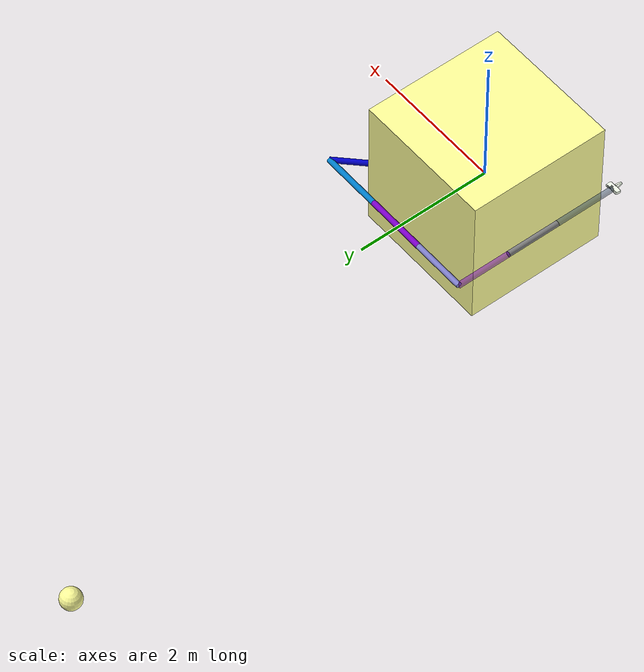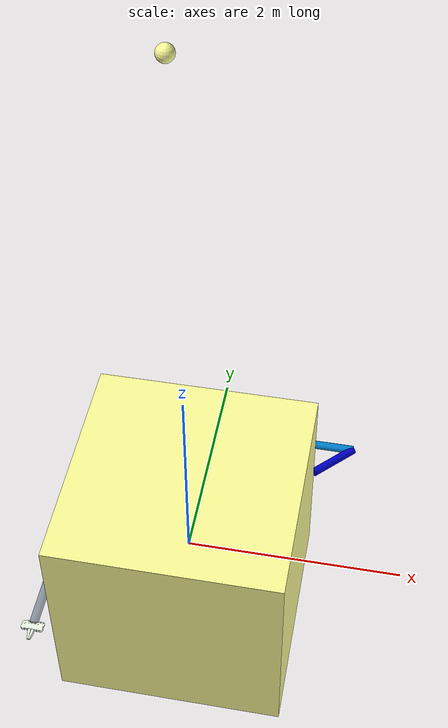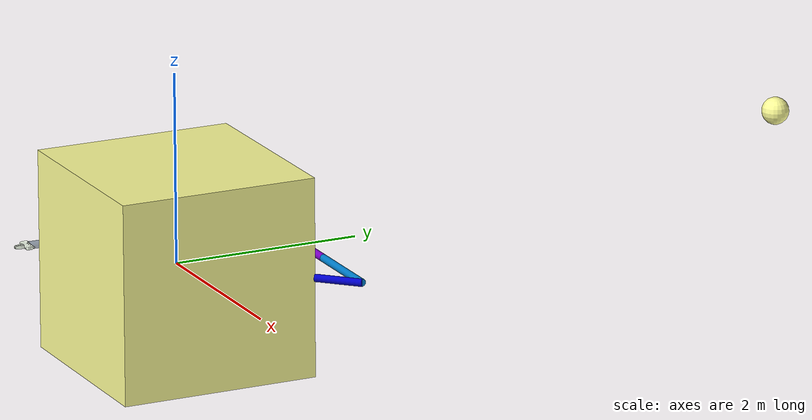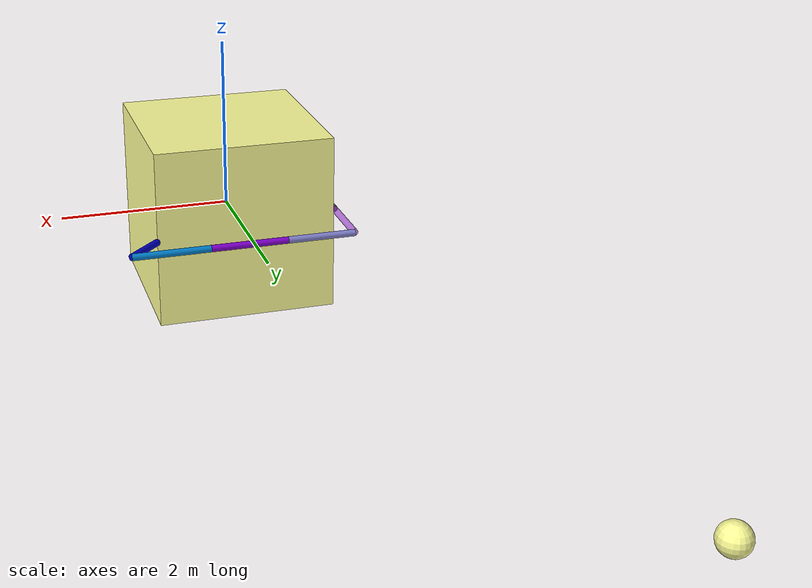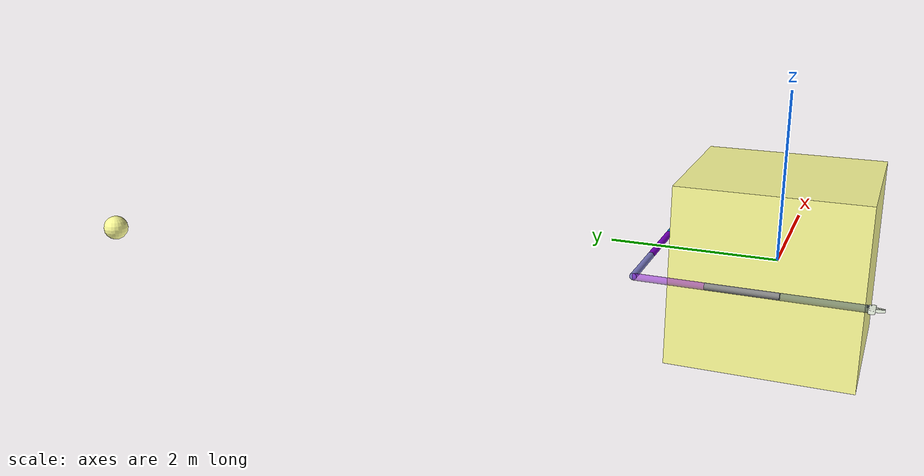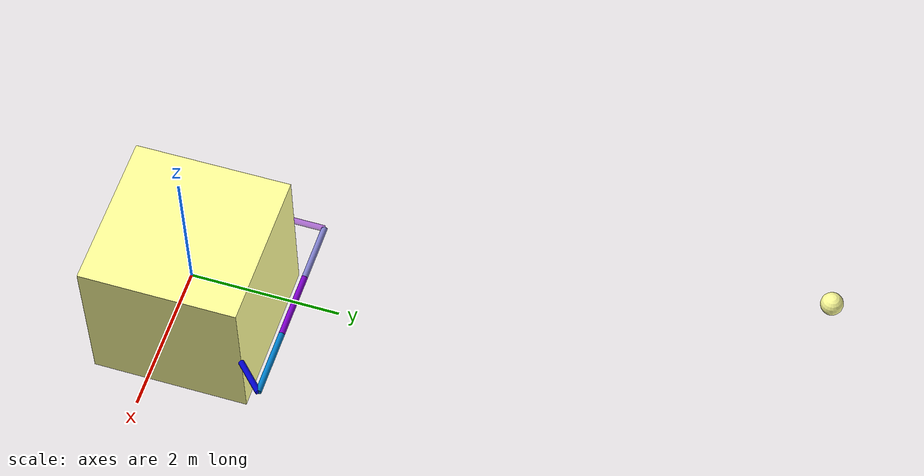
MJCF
<mujoco model="free_floating_spacecraft_manipulator">
    <compiler angle="radian" />
    <option timestep="0.1" iterations="30">
        <flag gravity="disable" />
    </option>
    <size njmax="1000" nconmax="100" />
    <default class="main">
        <default class="panda">
            <joint limited="true" />
            <general ctrllimited="true" forcelimited="true" biastype="affine" biasprm="0 -1 0 0 0 0 0 0 0 0" />
            <default class="spaceRobot_viz">
                <geom type="mesh" contype="0" conaffinity="0" rgba="0.95 0.99 0.92 1" />
            </default>
            <default class="spaceRobot_col">
                <geom type="mesh" group="3" rgba="0.5 0.6 0.7 1" />
            </default>
            <default class="spaceRobot_finger">
                <joint armature="5" damping="100" />
                <geom conaffinity="0" condim="6" group="3" friction="1 0.5 0.0001" solref="0.01 1" solimp="0.8 0.9 0.001 0.5 2" margin="0.001" rgba="0.5 0.6 0.7 0.4" />
            </default>
        </default>
    </default>
    <asset>
        <texture type="skybox" name="space" file="space.png" />
        <texture type="2d" name="texplane" builtin="checker" rgb1="0.2 0.3 0.4" rgb2="0.1 0.15 0.2" width="512" height="512" />
        <material name="MatGnd" texture="texplane" texuniform="true" reflectance="0.5" />
        <mesh name="hand_col" file="meshes/collision/hand.stl" />
        <mesh name="finger_col" file="meshes/collision/finger.stl" scale="1.75 1 1.75" />
        <mesh name="hand_viz" file="meshes/visual/hand.stl" />
        <mesh name="finger_viz" file="meshes/collision/finger.stl" scale="1.75 1 1.75" />
    </asset>
    <worldbody>
        <site name="debrisSite" pos="-2 8 0" size="0.15" rgba="1 1 0.6 1" />
        <light pos="1 1 3" dir="-0.301511 -0.301511 -0.904534" diffuse="0.8 0.8 0.8" />
        <light pos="1 -1 3" dir="-0.301511 0.301511 -0.904534" diffuse="0.8 0.8 0.8" />
        <light pos="-1 0 3" dir="0.316228 0 -0.948683" diffuse="0.8 0.8 0.8" />
        <body name="spacecraft_base" pos="0 0 0">
            <inertial pos="0 0 0" mass="500" diaginertia="1400 1400 1040" />
            <joint name="BasefloatingJoint" type="free" />
            <geom size="1.05 1.05 1.05" type="box" rgba="1 1 0.6 1" />
            <site name="baseSite" pos="0 0 0" size="0.01" rgba="0.1 0.2 0.3 1" />
            <site name="rateX" pos="0 0 0" size="0.06 0.035 0.025" type="box" rgba="0.3 0.8 0.3 1" />
            <site name="rateY" pos="0 0 0" size="0.06 0.035 0.025" type="box" rgba="0.3 0.8 0.3 1" />
            <site name="rateZ" pos="0 0 0" size="0.06 0.035 0.025" type="box" rgba="0.3 0.8 0.3 1" />
            <body name="spacecraft_link1" pos="1.2268 1.2268 0" quat="0.653281 -0.653281 0.270598 -0.270598">
                <inertial pos="0 0 0" mass="20" diaginertia="0.1 0.1 0.1" />
                <joint name="sjoint1" pos="0 0 0" axis="0 0 1" limited="true" range="-3.14159 3.14159" damping="6413.59" />
                <geom size="0.04 0.25" type="cylinder" rgba="0 0 0.8 1" />
                <body name="spacecraft_link2" pos="-0.3182 0 -0.0682" quat="0.383235 0 -0.923651 0">
                    <inertial pos="0 0 0" quat="0.5 0.5 0.5 0.5" mass="30" diaginertia="25 25 0.25" />
                    <joint name="sjoint2" pos="0 0 -0.45" axis="0 1 0" limited="true" range="-3.14159 3.14159" damping="313.126" />
                    <geom size="0.04 0.45" type="cylinder" rgba="0 0.5 0.8 1" />
                    <body name="spacecraft_link3" pos="0 0 0.9">
                        <inertial pos="0 0 0" quat="0.5 0.5 0.5 0.5" mass="30" diaginertia="25 25 0.25" />
                        <joint name="sjoint3" pos="0 0 -0.45" axis="1 0 0" limited="true" range="-3.14159 3.14159" damping="267.211" />
                        <geom size="0.04 0.45" type="cylinder" rgba="0.5 0 0.8 1" />
                        <body name="spacecraft_link4" pos="0 0 0.85">
                            <inertial pos="0 0 0" quat="0.5 0.5 0.5 0.5" mass="20" diaginertia="25 25 0.25" />
                            <joint name="sjoint4" pos="0 0 -0.4" axis="0 1 0" limited="true" range="-3.14159 3.14159" damping="530.79" />
                            <geom size="0.04 0.4" type="cylinder" rgba="0.5 0.5 0.8 1" />
                            <body name="spacecraft_link5" pos="-0.4 0 0.4" quat="0.707388 0 -0.706825 0">
                                <inertial pos="0 0 0" quat="0.5 0.5 0.5 0.5" mass="20" diaginertia="25 25 0.25" />
                                <joint name="sjoint5" pos="0 0 -0.4" axis="0 1 0" limited="true" range="-3.14159 3.14159" damping="643.963" />
                                <geom size="0.04 0.4" type="cylinder" rgba="0.5 0 0.8 0.5" />
                                <body name="spacecraft_link6" pos="0 0 0.8">
                                    <inertial pos="0 0 0" quat="0.5 0.5 0.5 0.5" mass="20" diaginertia="25 25 0.25" />
                                    <joint name="sjoint6" pos="0 0 -0.4" axis="0 1 0" limited="true" range="-3.14159 3.14159" damping="1711.56" />
                                    <geom size="0.04 0.4" type="cylinder" />
                                    <body name="spacecraft_link7" pos="0 0 0.85">
                                        <inertial pos="0 0 0" quat="0.5 0.5 0.5 0.5" mass="20" diaginertia="25 25 0" />
                                        <joint name="sjoint7" pos="0 0 0" axis="0 0 1" limited="true" range="-3.14159 3.14159" damping="2509.88" />
                                        <geom size="0.04 0.45" type="cylinder" rgba="0.2 0.3 0.4 0.5" />
                                        <geom class="spaceRobot_viz" pos="0 0 0.45" quat="0.707388 0 0 -0.706825" mesh="hand_viz" />
                                        <geom class="spaceRobot_col" pos="0 0 0.45" quat="0.707388 0 0 -0.706825" mesh="hand_col" />
                                        <site name="end_effector" pos="0 0 0.56" quat="0.92388 0 0 -0.382683" size="0.01" />
                                        <camera name="Cam1" pos="0 0 0" mode="track" />
                                        <body name="leftfinger" childclass="spaceRobot_finger" pos="0 0 0.5154" quat="0.707388 0 0 -0.706825">
                                            <inertial pos="-1.57863e-05 0.0118731 0.0434103" quat="0.705868 0.0310348 -0.0314925 0.706962" mass="0.0927059" diaginertia="6.57134e-05 6.09611e-05 1.09932e-05" />
                                            <geom class="spaceRobot_viz" mesh="finger_viz" />
                                            <geom size="0.007 0.00912414" pos="0 0.0075 0.0875" quat="0.707107 0.116248 0.697486 0" type="capsule" />
                                            <geom size="0.007 0.00912414" pos="0 0.0075 0.0875" quat="0.707107 -0.116248 0.697486 0" type="capsule" />
                                            <geom size="0.0075 0.00912414" pos="0 0.0085 0.0775" quat="0.707107 0.116248 0.697486 0" type="capsule" />
                                            <geom size="0.0075 0.00912414" pos="0 0.0085 0.0775" quat="0.707107 -0.116248 0.697486 0" type="capsule" />
                                            <geom size="0.0082 0.00912414" pos="0 0.0095 0.0675" quat="0.707107 0.116248 0.697486 0" type="capsule" />
                                            <geom size="0.0082 0.00912414" pos="0 0.0095 0.0675" quat="0.707107 -0.116248 0.697486 0" type="capsule" />
                                            <geom size="0.009 0.00912414" pos="0 0.0105 0.0575" quat="0.707107 0.116248 0.697486 0" type="capsule" />
                                            <geom size="0.009 0.00912414" pos="0 0.0105 0.0575" quat="0.707107 -0.116248 0.697486 0" type="capsule" />
                                            <geom size="0.01 0.00912414" pos="0 0.012 0.0475" quat="0.707107 0.116248 0.697486 0" type="capsule" />
                                            <geom size="0.01 0.00912414" pos="0 0.012 0.0475" quat="0.707107 -0.116248 0.697486 0" type="capsule" />
                                            <geom size="0.011 0.00912414" pos="0 0.0135 0.035" quat="0.707107 0.116248 0.697486 0" type="capsule" />
                                            <geom size="0.011 0.00912414" pos="0 0.0135 0.035" quat="0.707107 -0.116248 0.697486 0" type="capsule" />
                                            <geom size="0.0185 0.012 0.0175" pos="0 0.014 0.015" quat="0.999888 0.0149994 0 0" type="box" />
                                        </body>
                                        <body name="rightfinger" childclass="spaceRobot_finger" pos="0 0 0.5154" quat="0.707388 0 0 -0.706825">
                                            <inertial pos="1.57863e-05 -0.0118731 0.0434103" quat="0.705868 -0.0310348 0.0314925 0.706962" mass="0.0927059" diaginertia="6.57134e-05 6.09611e-05 1.09932e-05" />
                                            <geom class="spaceRobot_viz" quat="0 0 0 1" mesh="finger_viz" />
                                            <geom size="0.007 0.00912414" pos="0 -0.0075 0.0875" quat="0.707107 -0.116248 0.697486 0" type="capsule" />
                                            <geom size="0.007 0.00912414" pos="0 -0.0075 0.0875" quat="0.707107 0.116248 0.697486 0" type="capsule" />
                                            <geom size="0.0075 0.00912414" pos="0 -0.0085 0.0775" quat="0.707107 -0.116248 0.697486 0" type="capsule" />
                                            <geom size="0.0075 0.00912414" pos="0 -0.0085 0.0775" quat="0.707107 0.116248 0.697486 0" type="capsule" />
                                            <geom size="0.0082 0.00912414" pos="0 -0.0095 0.0675" quat="0.707107 -0.116248 0.697486 0" type="capsule" />
                                            <geom size="0.0082 0.00912414" pos="0 -0.0095 0.0675" quat="0.707107 0.116248 0.697486 0" type="capsule" />
                                            <geom size="0.009 0.00912414" pos="0 -0.0105 0.0575" quat="0.707107 -0.116248 0.697486 0" type="capsule" />
                                            <geom size="0.009 0.00912414" pos="0 -0.0105 0.0575" quat="0.707107 0.116248 0.697486 0" type="capsule" />
                                            <geom size="0.01 0.00912414" pos="0 -0.012 0.0475" quat="0.707107 -0.116248 0.697486 0" type="capsule" />
                                            <geom size="0.01 0.00912414" pos="0 -0.012 0.0475" quat="0.707107 0.116248 0.697486 0" type="capsule" />
                                            <geom size="0.011 0.00912414" pos="0 -0.0135 0.035" quat="0.707107 -0.116248 0.697486 0" type="capsule" />
                                            <geom size="0.011 0.00912414" pos="0 -0.0135 0.035" quat="0.707107 0.116248 0.697486 0" type="capsule" />
                                            <geom size="0.0185 0.012 0.0175" pos="0 -0.014 0.015" quat="0.999888 -0.0149994 0 0" type="box" />
                                        </body>
                                    </body>
                                </body>
                            </body>
                        </body>
                    </body>
                </body>
            </body>
        </body>
    </worldbody>
    <actuator>
        <general name="motorX" site="baseSite" ctrllimited="true" ctrlrange="-0.08 0.08" />
        <general name="motorY" site="baseSite" ctrllimited="true" ctrlrange="-0.08 0.08" gear="0 1 0 0 0 0" />
        <general name="motorZ" site="baseSite" ctrllimited="true" ctrlrange="-0.08 0.08" gear="0 0 1 0 0 0" />
        <general site="rateX" ctrllimited="true" ctrlrange="-0.08 0.08" gear="0 0 0 1 0 0" biastype="affine" gainprm="0.1 0 0 0 0 0 0 0 0 0" biasprm="0 0 -0.1 0 0 0 0 0 0 0" />
        <general site="rateY" ctrllimited="true" ctrlrange="-0.08 0.08" gear="0 0 0 0 1 0" biastype="affine" gainprm="0.1 0 0 0 0 0 0 0 0 0" biasprm="0 0 -0.1 0 0 0 0 0 0 0" />
        <general site="rateZ" ctrllimited="true" ctrlrange="-0.08 0.08" gear="0 0 0 0 0 1" biastype="affine" gainprm="0.1 0 0 0 0 0 0 0 0 0" biasprm="0 0 -0.1 0 0 0 0 0 0 0" />
        <general name="motor1" joint="sjoint1" ctrllimited="true" ctrlrange="-3 3" />
        <general name="motor2" joint="sjoint2" ctrllimited="true" ctrlrange="-3 3" />
        <general name="motor3" joint="sjoint3" ctrllimited="true" ctrlrange="-0.1 0.1" />
        <general name="motor4" joint="sjoint4" ctrllimited="true" ctrlrange="-3 3" />
        <general name="motor5" joint="sjoint5" ctrllimited="true" ctrlrange="-3 3" />
        <general name="motor6" joint="sjoint6" ctrllimited="true" ctrlrange="-3 3" />
        <general name="motor7" joint="sjoint7" ctrllimited="true" ctrlrange="-3 3" />
    </actuator>
</mujoco>
